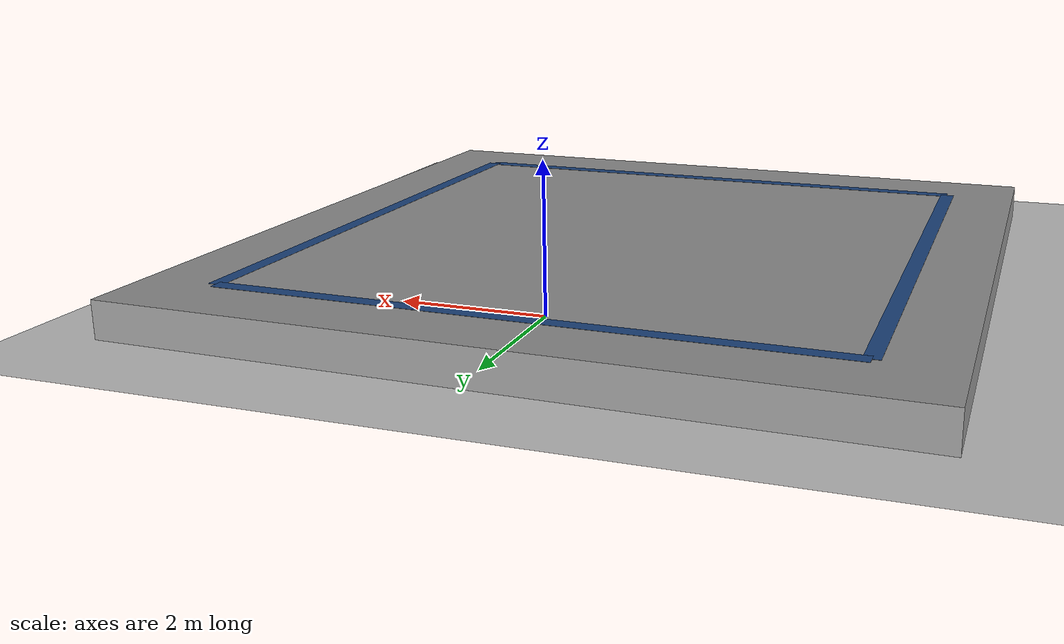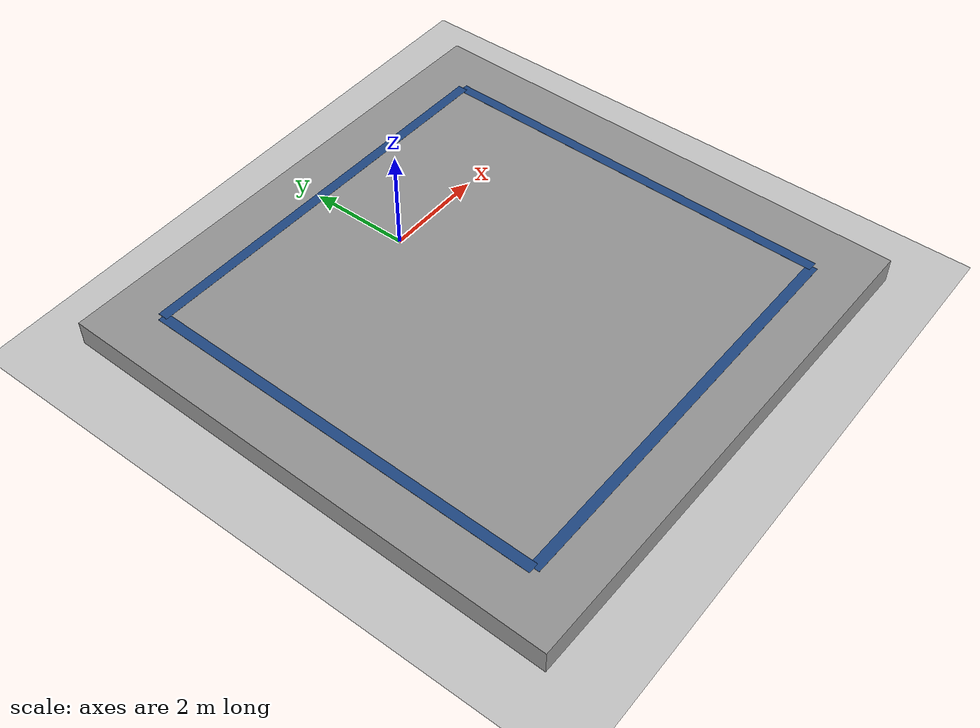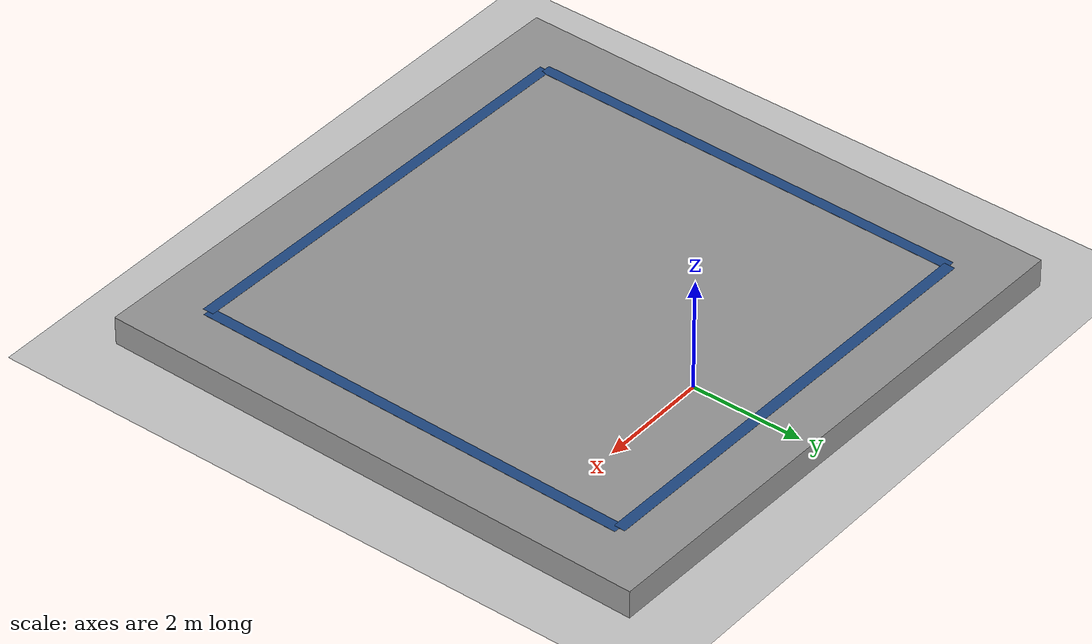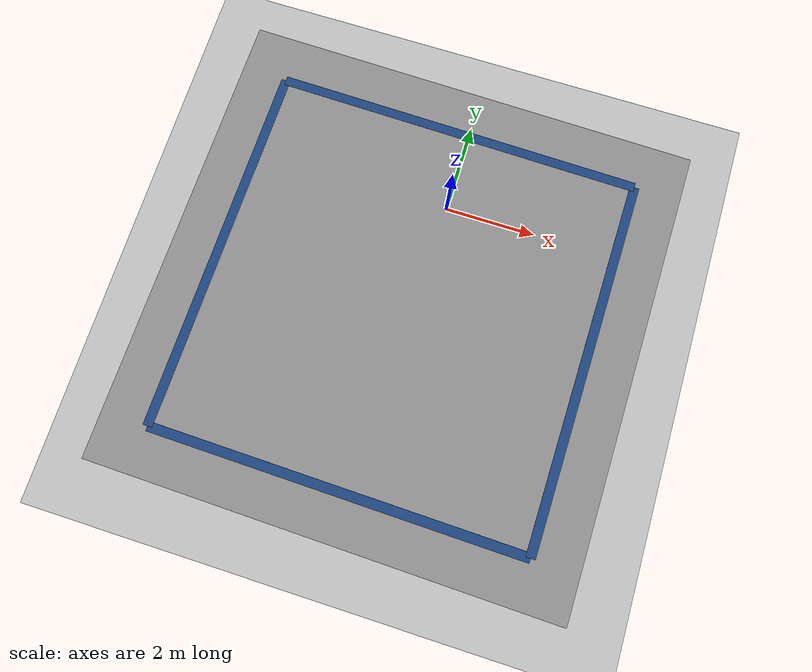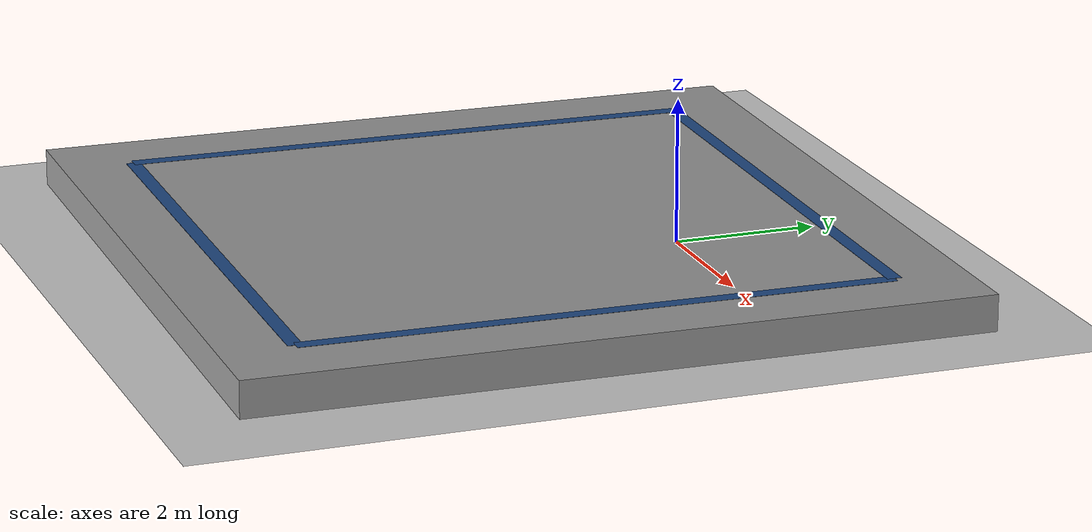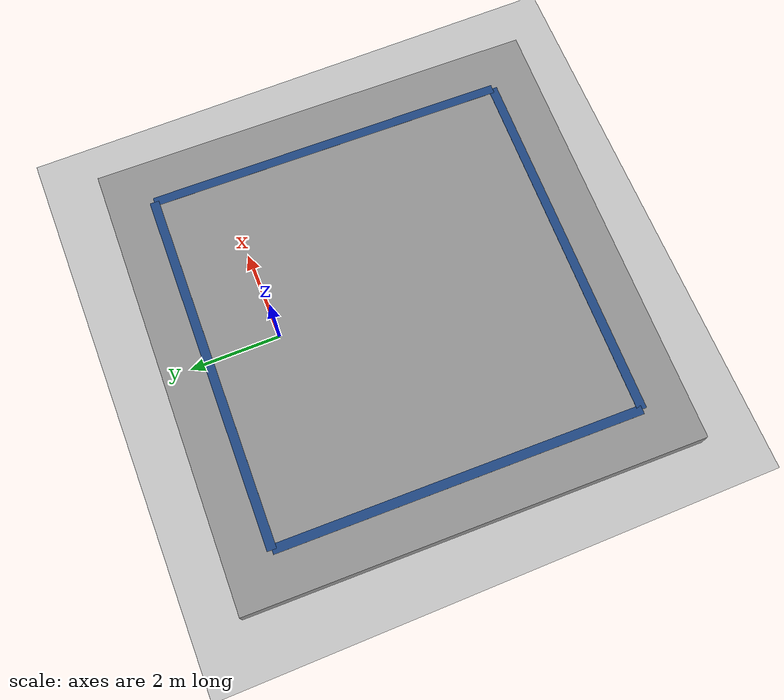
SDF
<sdf version="1.6">
 <world name="default">
  <light name="sun" type="directional">
   <pose>0 0 10 0 -0 0</pose>
   <diffuse>0.8 0.8 0.8 1</diffuse>
   <specular>0.2 0.2 0.2 1</specular>
   <attenuation>
    <range>1000</range>
    <constant>0.9</constant>
    <linear>0.01</linear>
    <quadratic>0.001</quadratic>
   </attenuation>
   <direction>-0.5 0.1 -0.9</direction>
  </light>
  <model name="ground_plane">
   <static>1</static>
   <link name="link">
    <collision name="collision">
     <geometry><plane><normal>0 0 1</normal><size>100 100</size></plane></geometry>
     <surface><friction><ode><mu>100</mu><mu2>50</mu2></ode></friction></surface>
    </collision>
    <visual name="visual">
     <cast_shadows>0</cast_shadows>
     <geometry><plane><normal>0 0 1</normal><size>100 100</size></plane></geometry>
     <material>
      <script><uri>file://media/materials/scripts/gazebo.material</uri><name>Gazebo/Grey</name></script>
     </material>
    </visual>
   </link>
  </model>
  <model name="plane">
   <pose>0.049194 -0.011655 -0.176423 -2.8e-05 -0.009661 -0.018762</pose>
   <link name="link_0">
    <inertial>
     <mass>1</mass>
     <inertia><ixx>0</ixx><ixy>0</ixy><ixz>0</ixz><iyy>0</iyy><iyz>0</iyz><izz>0</izz></inertia>
    </inertial>
    <pose>-0.3292 -2.41667 0.429429 0 0.009661 0</pose>
    <visual name="visual">
     <geometry><box><size>10 10 0.5</size></box></geometry>
     <material>
      <lighting>1</lighting>
      <script><uri>file://media/materials/scripts/gazebo.material</uri><name>Gazebo/Grey</name></script>
      <shader type="pixel"><normal_map>__default__</normal_map></shader>
      <ambient>1 1 1 1</ambient>
      <diffuse>1 1 1 1</diffuse>
      <specular>1 1 1 1</specular>
      <emissive>0 0 0 1</emissive>
     </material>
    </visual>
    <collision name="collision">
     <geometry><box><size>10 10 0.5</size></box></geometry>
     <surface>
      <friction>
       <ode><mu>1</mu><mu2>1</mu2><fdir1>0 0 0</fdir1><slip1>0</slip1><slip2>0</slip2></ode>
       <torsional>
        <coefficient>1</coefficient>
        <patch_radius>0</patch_radius>
        <surface_radius>0</surface_radius>
        <use_patch_radius>1</use_patch_radius>
        <ode><slip>0</slip></ode>
       </torsional>
      </friction>
      <bounce><restitution_coefficient>0</restitution_coefficient><threshold>1e+06</threshold></bounce>
      <contact>
       <collide_without_contact>0</collide_without_contact>
       <collide_without_contact_bitmask>1</collide_without_contact_bitmask>
       <collide_bitmask>1</collide_bitmask>
       <ode>
        <soft_cfm>0</soft_cfm>
        <soft_erp>0.2</soft_erp>
        <kp>1e+13</kp>
        <kd>1</kd>
        <max_vel>0.01</max_vel>
        <min_depth>0</min_depth>
       </ode>
       <bullet>
        <split_impulse>1</split_impulse>
        <split_impulse_penetration_threshold>-0.01</split_impulse_penetration_threshold>
        <soft_cfm>0</soft_cfm>
        <soft_erp>0.2</soft_erp>
        <kp>1e+13</kp>
        <kd>1</kd>
       </bullet>
      </contact>
     </surface>
    </collision>
   </link>
   <link name="link_0_0">
    <inertial>
     <mass>1</mass>
     <inertia>
      <ixx>0.166667</ixx>
      <ixy>0</ixy>
      <ixz>0</ixz>
      <iyy>0.166667</iyy>
      <iyz>0</iyz>
      <izz>0.166667</izz>
     </inertia>
    </inertial>
    <pose>-0.326785 -6.41667 0.679417 0 0.009661 0</pose>
    <visual name="visual">
     <geometry><box><size>8 0.2 0.005</size></box></geometry>
     <material>
      <lighting>1</lighting>
      <script><uri>file://media/materials/scripts/gazebo.material</uri><name>Gazebo/Grey</name></script>
      <shader type="pixel"><normal_map>__default__</normal_map></shader>
      <ambient>0.125 0.29 0.529 1</ambient>
      <diffuse>0.125 0.29 0.529 1</diffuse>
      <specular>0.125 0.29 0.529 1</specular>
      <emissive>0.125 0.29 0.529 1</emissive>
     </material>
    </visual>
    <collision name="collision">
     <geometry><box><size>8 0.2 0.005</size></box></geometry>
     <surface>
      <friction>
       <ode><mu>1</mu><mu2>1</mu2><fdir1>0 0 0</fdir1><slip1>0</slip1><slip2>0</slip2></ode>
       <torsional>
        <coefficient>1</coefficient>
        <patch_radius>0</patch_radius>
        <surface_radius>0</surface_radius>
        <use_patch_radius>1</use_patch_radius>
        <ode><slip>0</slip></ode>
       </torsional>
      </friction>
      <bounce><restitution_coefficient>0</restitution_coefficient><threshold>1e+06</threshold></bounce>
      <contact>
       <collide_without_contact>0</collide_without_contact>
       <collide_without_contact_bitmask>1</collide_without_contact_bitmask>
       <collide_bitmask>1</collide_bitmask>
       <ode>
        <soft_cfm>0</soft_cfm>
        <soft_erp>0.2</soft_erp>
        <kp>1e+13</kp>
        <kd>1</kd>
        <max_vel>0.01</max_vel>
        <min_depth>0</min_depth>
       </ode>
       <bullet>
        <split_impulse>1</split_impulse>
        <split_impulse_penetration_threshold>-0.01</split_impulse_penetration_threshold>
        <soft_cfm>0</soft_cfm>
        <soft_erp>0.2</soft_erp>
        <kp>1e+13</kp>
        <kd>1</kd>
       </bullet>
      </contact>
     </surface>
    </collision>
   </link>
   <link name="link_0_0_clone">
    <inertial>
     <mass>1</mass>
     <inertia>
      <ixx>0.166667</ixx>
      <ixy>0</ixy>
      <ixz>0</ixz>
      <iyy>0.166667</iyy>
      <iyz>0</iyz>
      <izz>0.166667</izz>
     </inertia>
    </inertial>
    <pose>-0.326785 1.58333 0.679417 0 0.009661 0</pose>
    <visual name="visual">
     <geometry><box><size>8 0.2 0.005</size></box></geometry>
     <material>
      <lighting>1</lighting>
      <script><uri>file://media/materials/scripts/gazebo.material</uri><name>Gazebo/Grey</name></script>
      <shader type="pixel"><normal_map>__default__</normal_map></shader>
      <ambient>0.125 0.29 0.529 1</ambient>
      <diffuse>0.125 0.29 0.529 1</diffuse>
      <specular>0.125 0.29 0.529 1</specular>
      <emissive>0.125 0.29 0.529 1</emissive>
     </material>
    </visual>
    <collision name="collision">
     <geometry><box><size>8 0.2 0.005</size></box></geometry>
     <surface>
      <friction>
       <ode><mu>1</mu><mu2>1</mu2><fdir1>0 0 0</fdir1><slip1>0</slip1><slip2>0</slip2></ode>
       <torsional>
        <coefficient>1</coefficient>
        <patch_radius>0</patch_radius>
        <surface_radius>0</surface_radius>
        <use_patch_radius>1</use_patch_radius>
        <ode><slip>0</slip></ode>
       </torsional>
      </friction>
      <bounce><restitution_coefficient>0</restitution_coefficient><threshold>1e+06</threshold></bounce>
      <contact>
       <collide_without_contact>0</collide_without_contact>
       <collide_without_contact_bitmask>1</collide_without_contact_bitmask>
       <collide_bitmask>1</collide_bitmask>
       <ode>
        <soft_cfm>0</soft_cfm>
        <soft_erp>0.2</soft_erp>
        <kp>1e+13</kp>
        <kd>1</kd>
        <max_vel>0.01</max_vel>
        <min_depth>0</min_depth>
       </ode>
       <bullet>
        <split_impulse>1</split_impulse>
        <split_impulse_penetration_threshold>-0.01</split_impulse_penetration_threshold>
        <soft_cfm>0</soft_cfm>
        <soft_erp>0.2</soft_erp>
        <kp>1e+13</kp>
        <kd>1</kd>
       </bullet>
      </contact>
     </surface>
    </collision>
   </link>
   <link name="link_0_0_clone_0">
    <inertial>
     <mass>1</mass>
     <inertia>
      <ixx>0.166667</ixx>
      <ixy>0</ixy>
      <ixz>0</ixz>
      <iyy>0.166667</iyy>
      <iyz>0</iyz>
      <izz>0.166667</izz>
     </inertia>
    </inertial>
    <pose>3.67303 -2.41667 0.640774 0.009661 8e-06 1.57</pose>
    <visual name="visual">
     <geometry><box><size>8 0.2 0.005</size></box></geometry>
     <material>
      <lighting>1</lighting>
      <script><uri>file://media/materials/scripts/gazebo.material</uri><name>Gazebo/Grey</name></script>
      <shader type="pixel"><normal_map>__default__</normal_map></shader>
      <ambient>0.125 0.29 0.529 1</ambient>
      <diffuse>0.125 0.29 0.529 1</diffuse>
      <specular>0.125 0.29 0.529 1</specular>
      <emissive>0.125 0.29 0.529 1</emissive>
     </material>
    </visual>
    <collision name="collision">
     <geometry><box><size>8 0.2 0.005</size></box></geometry>
     <surface>
      <friction>
       <ode><mu>1</mu><mu2>1</mu2><fdir1>0 0 0</fdir1><slip1>0</slip1><slip2>0</slip2></ode>
       <torsional>
        <coefficient>1</coefficient>
        <patch_radius>0</patch_radius>
        <surface_radius>0</surface_radius>
        <use_patch_radius>1</use_patch_radius>
        <ode><slip>0</slip></ode>
       </torsional>
      </friction>
      <bounce><restitution_coefficient>0</restitution_coefficient><threshold>1e+06</threshold></bounce>
      <contact>
       <collide_without_contact>0</collide_without_contact>
       <collide_without_contact_bitmask>1</collide_without_contact_bitmask>
       <collide_bitmask>1</collide_bitmask>
       <ode>
        <soft_cfm>0</soft_cfm>
        <soft_erp>0.2</soft_erp>
        <kp>1e+13</kp>
        <kd>1</kd>
        <max_vel>0.01</max_vel>
        <min_depth>0</min_depth>
       </ode>
       <bullet>
        <split_impulse>1</split_impulse>
        <split_impulse_penetration_threshold>-0.01</split_impulse_penetration_threshold>
        <soft_cfm>0</soft_cfm>
        <soft_erp>0.2</soft_erp>
        <kp>1e+13</kp>
        <kd>1</kd>
       </bullet>
      </contact>
     </surface>
    </collision>
   </link>
   <link name="link_0_0_clone_1">
    <inertial>
     <mass>1</mass>
     <inertia>
      <ixx>0.166667</ixx>
      <ixy>0</ixy>
      <ixz>0</ixz>
      <iyy>0.166667</iyy>
      <iyz>0</iyz>
      <izz>0.166667</izz>
     </inertia>
    </inertial>
    <pose>-4.3266 -2.41667 0.718061 0.009661 8e-06 1.57</pose>
    <visual name="visual">
     <geometry><box><size>8 0.2 0.005</size></box></geometry>
     <material>
      <lighting>1</lighting>
      <script><uri>file://media/materials/scripts/gazebo.material</uri><name>Gazebo/Grey</name></script>
      <shader type="pixel"><normal_map>__default__</normal_map></shader>
      <ambient>0.125 0.29 0.529 1</ambient>
      <diffuse>0.125 0.29 0.529 1</diffuse>
      <specular>0.125 0.29 0.529 1</specular>
      <emissive>0.125 0.29 0.529 1</emissive>
     </material>
    </visual>
    <collision name="collision">
     <geometry><box><size>8 0.2 0.005</size></box></geometry>
     <surface>
      <friction>
       <ode><mu>1</mu><mu2>1</mu2><fdir1>0 0 0</fdir1><slip1>0</slip1><slip2>0</slip2></ode>
       <torsional>
        <coefficient>1</coefficient>
        <patch_radius>0</patch_radius>
        <surface_radius>0</surface_radius>
        <use_patch_radius>1</use_patch_radius>
        <ode><slip>0</slip></ode>
       </torsional>
      </friction>
      <bounce><restitution_coefficient>0</restitution_coefficient><threshold>1e+06</threshold></bounce>
      <contact>
       <collide_without_contact>0</collide_without_contact>
       <collide_without_contact_bitmask>1</collide_without_contact_bitmask>
       <collide_bitmask>1</collide_bitmask>
       <ode>
        <soft_cfm>0</soft_cfm>
        <soft_erp>0.2</soft_erp>
        <kp>1e+13</kp>
        <kd>1</kd>
        <max_vel>0.01</max_vel>
        <min_depth>0</min_depth>
       </ode>
       <bullet>
        <split_impulse>1</split_impulse>
        <split_impulse_penetration_threshold>-0.01</split_impulse_penetration_threshold>
        <soft_cfm>0</soft_cfm>
        <soft_erp>0.2</soft_erp>
        <kp>1e+13</kp>
        <kd>1</kd>
       </bullet>
      </contact>
     </surface>
    </collision>
   </link>
   <joint name="link_0_JOINT_0" type="fixed">
    <parent>link_0</parent>
    <child>link_0_0</child>
    <physics>
     <ode><limit><cfm>0</cfm><erp>0.2</erp></limit><suspension><cfm>0</cfm><erp>0.2</erp></suspension></ode>
    </physics>
   </joint>
   <joint name="link_0_JOINT_1" type="fixed">
    <parent>link_0</parent>
    <child>link_0_0_clone</child>
    <physics>
     <ode><limit><cfm>0</cfm><erp>0.2</erp></limit><suspension><cfm>0</cfm><erp>0.2</erp></suspension></ode>
    </physics>
   </joint>
   <joint name="link_0_JOINT_2" type="fixed">
    <parent>link_0</parent>
    <child>link_0_0_clone_0</child>
    <physics>
     <ode><limit><cfm>0</cfm><erp>0.2</erp></limit><suspension><cfm>0</cfm><erp>0.2</erp></suspension></ode>
    </physics>
   </joint>
   <joint name="link_0_JOINT_3" type="fixed">
    <parent>link_0</parent>
    <child>link_0_0_clone_1</child>
    <physics>
     <ode><limit><cfm>0</cfm><erp>0.2</erp></limit><suspension><cfm>0</cfm><erp>0.2</erp></suspension></ode>
    </physics>
   </joint>
   <static>0</static>
  </model>
  <gravity>0 0 -9.8</gravity>
  <magnetic_field>6e-06 2.3e-05 -4.2e-05</magnetic_field>
  <atmosphere type="adiabatic"/>
  <physics name="default_physics" default="0" type="ode">
   <max_step_size>0.001</max_step_size>
   <real_time_factor>1</real_time_factor>
   <real_time_update_rate>1000</real_time_update_rate>
  </physics>
  <scene><ambient>0.4 0.4 0.4 1</ambient><background>0.7 0.7 0.7 1</background><shadows>1</shadows></scene>
  <audio><device>default</device></audio>
  <spherical_coordinates>
   <surface_model>EARTH_WGS84</surface_model>
   <latitude_deg>0</latitude_deg>
   <longitude_deg>0</longitude_deg>
   <elevation>0</elevation>
   <heading_deg>0</heading_deg>
  </spherical_coordinates>
 </world>
</sdf>
